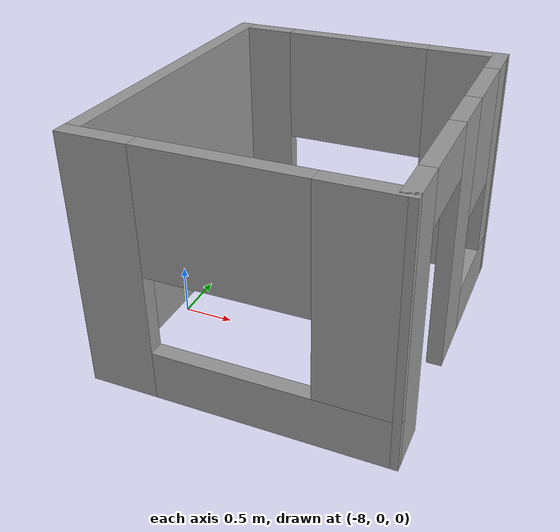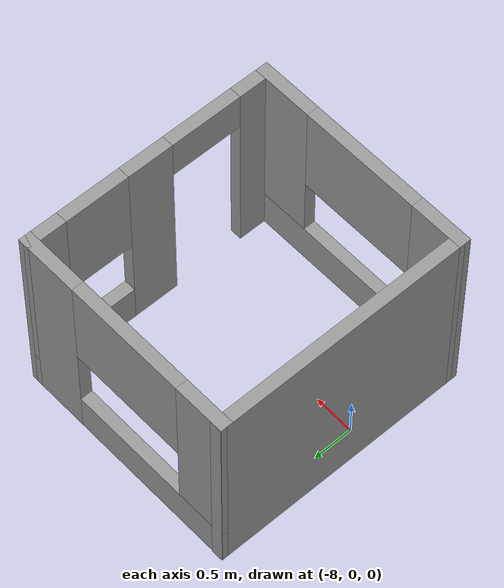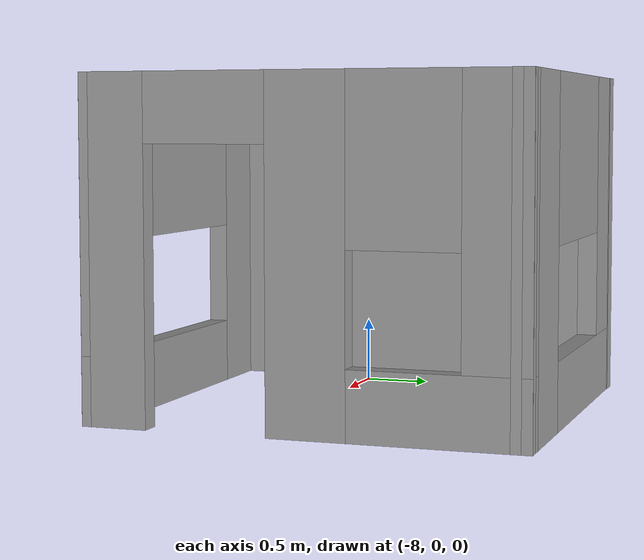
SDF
<?xml version='1.0'?>
<sdf version='1.7'>
  <model name='simple_world'>
    <pose>-4.12492 0.366728 0 0 -0 0</pose>
    <link name='Wall_10'>
      <pose>-2.65878 1.55 0 0 -0 -3.13543</pose>
      <visual name='Wall_10_Visual_0'>
        <pose>-1.06906 0 1.25 0 -0 0</pose>
        <geometry>
          <box>
            <size>0.793294 0.15 2.5</size>
          </box>
        </geometry>
        <material>
          <script>
            <uri>file://media/materials/scripts/gazebo.material</uri>
            <name>Gazebo/Grey</name>
          </script>
          <ambient>1 1 1 1</ambient>
        </material>
        <meta>
          <layer>0</layer>
        </meta>
      </visual>
      <collision name='Wall_10_Collision_0'>
        <geometry>
          <box>
            <size>0.793294 0.15 2.5</size>
          </box>
        </geometry>
        <pose>-1.06906 0 1.25 0 -0 0</pose>
      </collision>
      <visual name='Wall_10_Visual_1'>
        <pose>0.396647 0 0.25 0 -0 0</pose>
        <geometry>
          <box>
            <size>2.13812 0.15 0.5</size>
          </box>
        </geometry>
        <material>
          <script>
            <uri>file://media/materials/scripts/gazebo.material</uri>
            <name>Gazebo/Grey</name>
          </script>
          <ambient>1 1 1 1</ambient>
        </material>
        <meta>
          <layer>0</layer>
        </meta>
      </visual>
      <collision name='Wall_10_Collision_1'>
        <geometry>
          <box>
            <size>2.13812 0.15 0.5</size>
          </box>
        </geometry>
        <pose>0.396647 0 0.25 0 -0 0</pose>
      </collision>
      <visual name='Wall_10_Visual_2'>
        <pose>1.14665 0 1.5 0 -0 0</pose>
        <geometry>
          <box>
            <size>0.638119 0.15 2</size>
          </box>
        </geometry>
        <material>
          <script>
            <uri>file://media/materials/scripts/gazebo.material</uri>
            <name>Gazebo/Grey</name>
          </script>
          <ambient>1 1 1 1</ambient>
        </material>
        <meta>
          <layer>0</layer>
        </meta>
      </visual>
      <collision name='Wall_10_Collision_2'>
        <geometry>
          <box>
            <size>0.638119 0.15 2</size>
          </box>
        </geometry>
        <pose>1.14665 0 1.5 0 -0 0</pose>
      </collision>
      <visual name='Wall_10_Visual_3'>
        <pose>0.077588 0 1.9 0 -0 0</pose>
        <geometry>
          <box>
            <size>1.5 0.15 1.2</size>
          </box>
        </geometry>
        <material>
          <script>
            <uri>file://media/materials/scripts/gazebo.material</uri>
            <name>Gazebo/Grey</name>
          </script>
          <ambient>1 1 1 1</ambient>
        </material>
        <meta>
          <layer>0</layer>
        </meta>
      </visual>
      <collision name='Wall_10_Collision_3'>
        <geometry>
          <box>
            <size>1.5 0.15 1.2</size>
          </box>
        </geometry>
        <pose>0.077588 0 1.9 0 -0 0</pose>
      </collision>
    </link>
    <link name='Wall_7'>
      <collision name='Wall_7_Collision'>
        <geometry>
          <box>
            <size>3.25 0.15 2.5</size>
          </box>
        </geometry>
        <pose>0 0 1.25 0 -0 0</pose>
      </collision>
      <visual name='Wall_7_Visual'>
        <pose>0 0 1.25 0 -0 0</pose>
        <geometry>
          <box>
            <size>3.25 0.15 2.5</size>
          </box>
        </geometry>
        <material>
          <script>
            <uri>file://media/materials/scripts/gazebo.material</uri>
            <name>Gazebo/Grey</name>
          </script>
          <ambient>1 1 1 1</ambient>
        </material>
        <meta>
          <layer>0</layer>
        </meta>
      </visual>
      <pose>-4.04947 -0.002859 0 0 -0 -1.5708</pose>
    </link>
    <link name='Wall_8'>
      <pose>-2.65878 -1.55 0 0 -0 0.006167</pose>
      <visual name='Wall_8_Visual_0'>
        <pose>-1.13137 0 1.25 0 -0 0</pose>
        <geometry>
          <box>
            <size>0.668665 0.15 2.5</size>
          </box>
        </geometry>
        <material>
          <script>
            <uri>file://media/materials/scripts/gazebo.material</uri>
            <name>Gazebo/Grey</name>
          </script>
          <ambient>1 1 1 1</ambient>
        </material>
        <meta>
          <layer>0</layer>
        </meta>
      </visual>
      <collision name='Wall_8_Collision_0'>
        <geometry>
          <box>
            <size>0.668665 0.15 2.5</size>
          </box>
        </geometry>
        <pose>-1.13137 0 1.25 0 -0 0</pose>
      </collision>
      <visual name='Wall_8_Visual_1'>
        <pose>0.334333 0 0.25 0 -0 0</pose>
        <geometry>
          <box>
            <size>2.26275 0.15 0.5</size>
          </box>
        </geometry>
        <material>
          <script>
            <uri>file://media/materials/scripts/gazebo.material</uri>
            <name>Gazebo/Grey</name>
          </script>
          <ambient>1 1 1 1</ambient>
        </material>
        <meta>
          <layer>0</layer>
        </meta>
      </visual>
      <collision name='Wall_8_Collision_1'>
        <geometry>
          <box>
            <size>2.26275 0.15 0.5</size>
          </box>
        </geometry>
        <pose>0.334333 0 0.25 0 -0 0</pose>
      </collision>
      <visual name='Wall_8_Visual_2'>
        <pose>1.08433 0 1.5 0 -0 0</pose>
        <geometry>
          <box>
            <size>0.762748 0.15 2</size>
          </box>
        </geometry>
        <material>
          <script>
            <uri>file://media/materials/scripts/gazebo.material</uri>
            <name>Gazebo/Grey</name>
          </script>
          <ambient>1 1 1 1</ambient>
        </material>
        <meta>
          <layer>0</layer>
        </meta>
      </visual>
      <collision name='Wall_8_Collision_2'>
        <geometry>
          <box>
            <size>0.762748 0.15 2</size>
          </box>
        </geometry>
        <pose>1.08433 0 1.5 0 -0 0</pose>
      </collision>
      <visual name='Wall_8_Visual_3'>
        <pose>-0.047041 0 1.9 0 -0 0</pose>
        <geometry>
          <box>
            <size>1.5 0.15 1.2</size>
          </box>
        </geometry>
        <material>
          <script>
            <uri>file://media/materials/scripts/gazebo.material</uri>
            <name>Gazebo/Grey</name>
          </script>
          <ambient>1 1 1 1</ambient>
        </material>
        <meta>
          <layer>0</layer>
        </meta>
      </visual>
      <collision name='Wall_8_Collision_3'>
        <geometry>
          <box>
            <size>1.5 0.15 1.2</size>
          </box>
        </geometry>
        <pose>-0.047041 0 1.9 0 -0 0</pose>
      </collision>
    </link>
    <link name='Wall_9'>
      <pose>-1.26808 0.008576 0 0 -0 1.5708</pose>
      <visual name='Wall_9_Visual_0'>
        <pose>-1.378 0 1.25 0 -0 0</pose>
        <geometry>
          <box>
            <size>0.494 0.15 2.5</size>
          </box>
        </geometry>
        <material>
          <script>
            <uri>file://media/materials/scripts/gazebo.material</uri>
            <name>Gazebo/Grey</name>
          </script>
          <ambient>1 1 1 1</ambient>
        </material>
        <meta>
          <layer>0</layer>
        </meta>
      </visual>
      <collision name='Wall_9_Collision_0'>
        <geometry>
          <box>
            <size>0.494 0.15 2.5</size>
          </box>
        </geometry>
        <pose>-1.378 0 1.25 0 -0 0</pose>
      </collision>
      <visual name='Wall_9_Visual_1'>
        <pose>0.057 0 1.25 0 -0 0</pose>
        <geometry>
          <box>
            <size>0.576 0.15 2.5</size>
          </box>
        </geometry>
        <material>
          <script>
            <uri>file://media/materials/scripts/gazebo.material</uri>
            <name>Gazebo/Grey</name>
          </script>
          <ambient>1 1 1 1</ambient>
        </material>
        <meta>
          <layer>0</layer>
        </meta>
      </visual>
      <collision name='Wall_9_Collision_1'>
        <geometry>
          <box>
            <size>0.576 0.15 2.5</size>
          </box>
        </geometry>
        <pose>0.057 0 1.25 0 -0 0</pose>
      </collision>
      <visual name='Wall_9_Visual_2'>
        <pose>0.985 0 0.25 0 -0 0</pose>
        <geometry>
          <box>
            <size>1.28 0.15 0.5</size>
          </box>
        </geometry>
        <material>
          <script>
            <uri>file://media/materials/scripts/gazebo.material</uri>
            <name>Gazebo/Grey</name>
          </script>
          <ambient>1 1 1 1</ambient>
        </material>
        <meta>
          <layer>0</layer>
        </meta>
      </visual>
      <collision name='Wall_9_Collision_2'>
        <geometry>
          <box>
            <size>1.28 0.15 0.5</size>
          </box>
        </geometry>
        <pose>0.985 0 0.25 0 -0 0</pose>
      </collision>
      <visual name='Wall_9_Visual_3'>
        <pose>1.385 0 1.5 0 -0 0</pose>
        <geometry>
          <box>
            <size>0.48 0.15 2</size>
          </box>
        </geometry>
        <material>
          <script>
            <uri>file://media/materials/scripts/gazebo.material</uri>
            <name>Gazebo/Grey</name>
          </script>
          <ambient>1 1 1 1</ambient>
        </material>
        <meta>
          <layer>0</layer>
        </meta>
      </visual>
      <collision name='Wall_9_Collision_3'>
        <geometry>
          <box>
            <size>0.48 0.15 2</size>
          </box>
        </geometry>
        <pose>1.385 0 1.5 0 -0 0</pose>
      </collision>
      <visual name='Wall_9_Visual_4'>
        <pose>0.745 0 1.9 0 -0 0</pose>
        <geometry>
          <box>
            <size>0.8 0.15 1.2</size>
          </box>
        </geometry>
        <material>
          <script>
            <uri>file://media/materials/scripts/gazebo.material</uri>
            <name>Gazebo/Grey</name>
          </script>
          <ambient>1 1 1 1</ambient>
        </material>
        <meta>
          <layer>0</layer>
        </meta>
      </visual>
      <collision name='Wall_9_Collision_4'>
        <geometry>
          <box>
            <size>0.8 0.15 1.2</size>
          </box>
        </geometry>
        <pose>0.745 0 1.9 0 -0 0</pose>
      </collision>
      <visual name='Wall_9_Visual_5'>
        <pose>-0.681 0 2.25 0 -0 0</pose>
        <geometry>
          <box>
            <size>0.9 0.15 0.5</size>
          </box>
        </geometry>
        <material>
          <script>
            <uri>file://media/materials/scripts/gazebo.material</uri>
            <name>Gazebo/Grey</name>
          </script>
          <ambient>1 1 1 1</ambient>
        </material>
        <meta>
          <layer>0</layer>
        </meta>
      </visual>
      <collision name='Wall_9_Collision_5'>
        <geometry>
          <box>
            <size>0.9 0.15 0.5</size>
          </box>
        </geometry>
        <pose>-0.681 0 2.25 0 -0 0</pose>
      </collision>
    </link>
    <static>1</static>
  </model>
</sdf>
